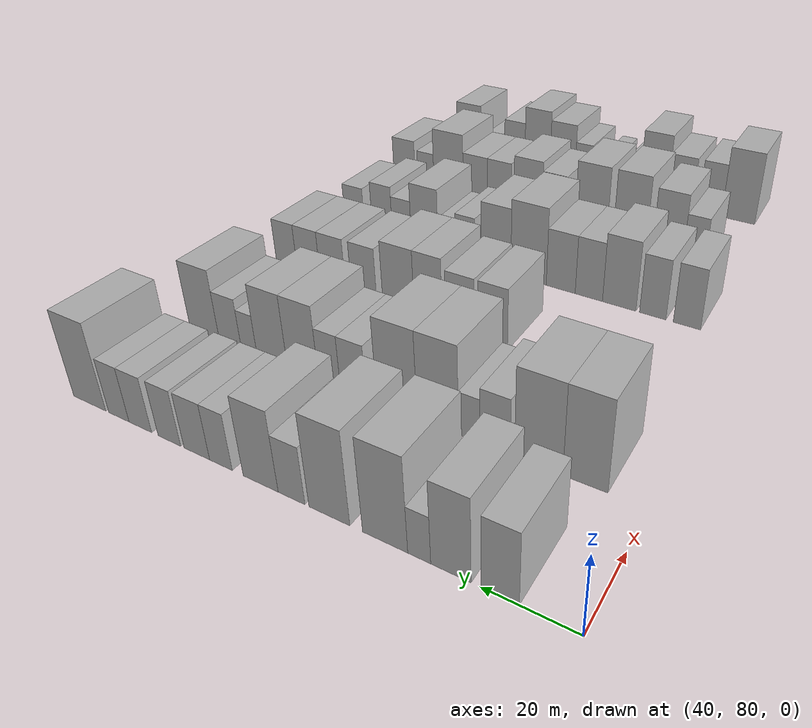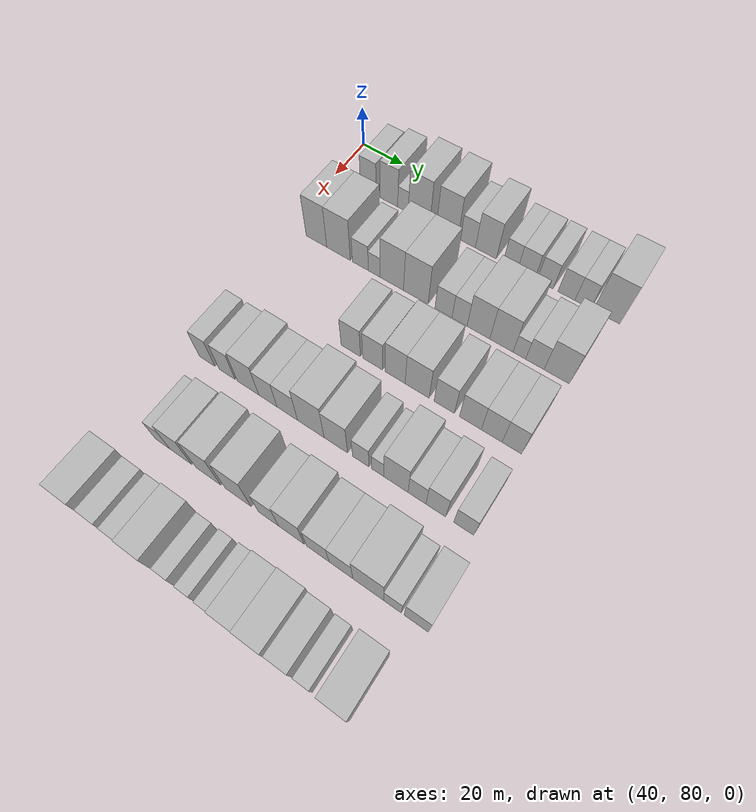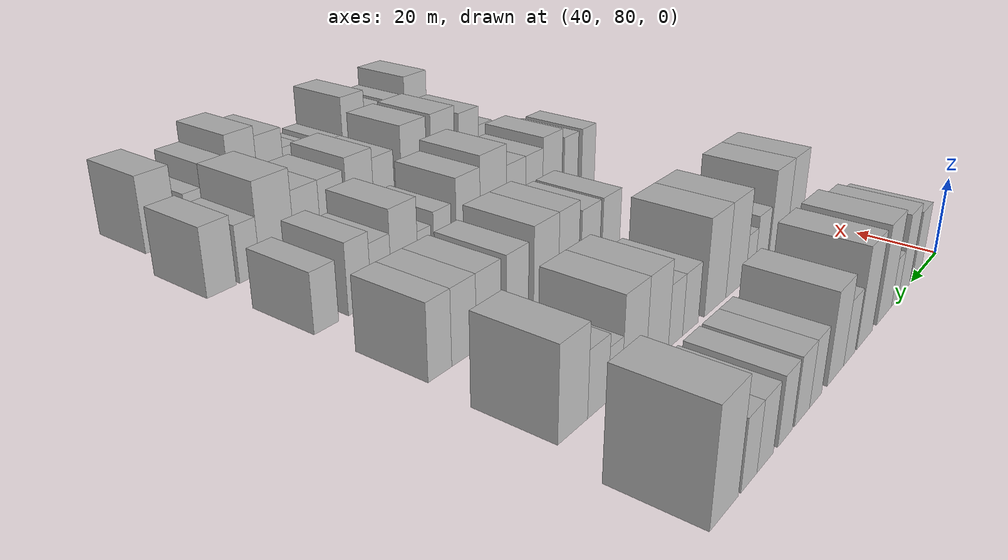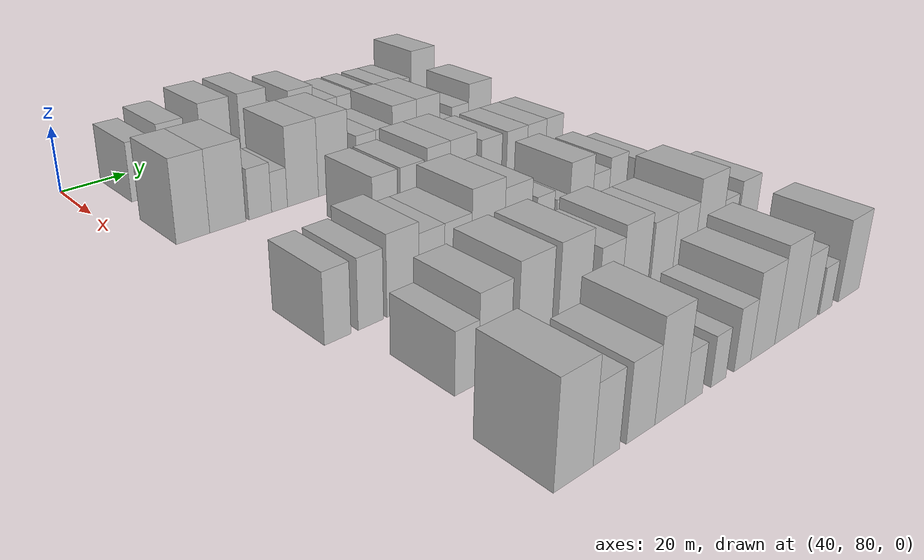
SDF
<sdf version="1.6">
 <world name="default">
  <model name="building_72">
   <static>1</static>
   <pose>50.0000 96.0303 0 0.000000 0.000000 0.000000</pose>
   <link name="link">
    <pose>0 0 9.00 0 0 0</pose>
    <collision name="collision"><geometry><box><size>20.0000 7.6782 18.0000</size></box></geometry></collision>
    <visual name="visual">
     <cast_shadows>0</cast_shadows>
     <geometry><box><size>20.0000 7.6782 18.0000</size></box></geometry>
     <material>
      <script>
       <uri>model://HANNAS_wall/materials/scripts</uri>
       <uri>model://HANNAS_wall/materials/textures</uri>
       <name>vrc/HANNAS_wall</name>
      </script>
     </material>
    </visual>
   </link>
  </model>
  <model name="building_73">
   <static>1</static>
   <pose>50.0000 106.1258 0 0.000000 0.000000 0.000000</pose>
   <link name="link">
    <pose>0 0 10.50 0 0 0</pose>
    <collision name="collision"><geometry><box><size>20.0000 8.5127 21.0000</size></box></geometry></collision>
    <visual name="visual">
     <cast_shadows>0</cast_shadows>
     <geometry><box><size>20.0000 8.5127 21.0000</size></box></geometry>
     <material>
      <script>
       <uri>model://HANNAS_wall/materials/scripts</uri>
       <uri>model://HANNAS_wall/materials/textures</uri>
       <name>vrc/HANNAS_wall</name>
      </script>
     </material>
    </visual>
   </link>
  </model>
  <model name="building_74">
   <static>1</static>
   <pose>50.0000 112.9020 0 0.000000 0.000000 0.000000</pose>
   <link name="link">
    <pose>0 0 6.00 0 0 0</pose>
    <collision name="collision"><geometry><box><size>20.0000 5.0397 12.0000</size></box></geometry></collision>
    <visual name="visual">
     <cast_shadows>0</cast_shadows>
     <geometry><box><size>20.0000 5.0397 12.0000</size></box></geometry>
     <material>
      <script>
       <uri>model://HANNAS_wall/materials/scripts</uri>
       <uri>model://HANNAS_wall/materials/textures</uri>
       <name>vrc/HANNAS_wall</name>
      </script>
     </material>
    </visual>
   </link>
  </model>
  <model name="building_75">
   <static>1</static>
   <pose>50.0000 120.5652 0 0.000000 0.000000 0.000000</pose>
   <link name="link">
    <pose>0 0 12.00 0 0 0</pose>
    <collision name="collision"><geometry><box><size>20.0000 10.2867 24.0000</size></box></geometry></collision>
    <visual name="visual">
     <cast_shadows>0</cast_shadows>
     <geometry><box><size>20.0000 10.2867 24.0000</size></box></geometry>
     <material>
      <script>
       <uri>model://HANNAS_wall/materials/scripts</uri>
       <uri>model://HANNAS_wall/materials/textures</uri>
       <name>vrc/HANNAS_wall</name>
      </script>
     </material>
    </visual>
   </link>
  </model>
  <model name="building_76">
   <static>1</static>
   <pose>50.0000 133.6876 0 0.000000 0.000000 0.000000</pose>
   <link name="link">
    <pose>0 0 12.00 0 0 0</pose>
    <collision name="collision"><geometry><box><size>20.0000 9.9581 24.0000</size></box></geometry></collision>
    <visual name="visual">
     <cast_shadows>0</cast_shadows>
     <geometry><box><size>20.0000 9.9581 24.0000</size></box></geometry>
     <material>
      <script>
       <uri>model://HANNAS_wall/materials/scripts</uri>
       <uri>model://HANNAS_wall/materials/textures</uri>
       <name>vrc/HANNAS_wall</name>
      </script>
     </material>
    </visual>
   </link>
  </model>
  <model name="building_77">
   <static>1</static>
   <pose>50.0000 143.0907 0 0.000000 0.000000 0.000000</pose>
   <link name="link">
    <pose>0 0 7.50 0 0 0</pose>
    <collision name="collision"><geometry><box><size>20.0000 6.8481 15.0000</size></box></geometry></collision>
    <visual name="visual">
     <cast_shadows>0</cast_shadows>
     <geometry><box><size>20.0000 6.8481 15.0000</size></box></geometry>
     <material>
      <script>
       <uri>model://HANNAS_wall/materials/scripts</uri>
       <uri>model://HANNAS_wall/materials/textures</uri>
       <name>vrc/HANNAS_wall</name>
      </script>
     </material>
    </visual>
   </link>
  </model>
  <model name="building_78">
   <static>1</static>
   <pose>50.0000 151.1597 0 0.000000 0.000000 0.000000</pose>
   <link name="link">
    <pose>0 0 10.50 0 0 0</pose>
    <collision name="collision"><geometry><box><size>20.0000 9.2900 21.0000</size></box></geometry></collision>
    <visual name="visual">
     <cast_shadows>0</cast_shadows>
     <geometry><box><size>20.0000 9.2900 21.0000</size></box></geometry>
     <material>
      <script>
       <uri>model://HANNAS_wall/materials/scripts</uri>
       <uri>model://HANNAS_wall/materials/textures</uri>
       <name>vrc/HANNAS_wall</name>
      </script>
     </material>
    </visual>
   </link>
  </model>
  <model name="building_79">
   <static>1</static>
   <pose>50.0000 161.9691 0 0.000000 0.000000 0.000000</pose>
   <link name="link">
    <pose>0 0 7.50 0 0 0</pose>
    <collision name="collision"><geometry><box><size>20.0000 6.3287 15.0000</size></box></geometry></collision>
    <visual name="visual">
     <cast_shadows>0</cast_shadows>
     <geometry><box><size>20.0000 6.3287 15.0000</size></box></geometry>
     <material>
      <script>
       <uri>model://HANNAS_wall/materials/scripts</uri>
       <uri>model://HANNAS_wall/materials/textures</uri>
       <name>vrc/HANNAS_wall</name>
      </script>
     </material>
    </visual>
   </link>
  </model>
  <model name="building_80">
   <static>1</static>
   <pose>50.0000 168.8251 0 0.000000 0.000000 0.000000</pose>
   <link name="link">
    <pose>0 0 7.50 0 0 0</pose>
    <collision name="collision"><geometry><box><size>20.0000 7.3834 15.0000</size></box></geometry></collision>
    <visual name="visual">
     <cast_shadows>0</cast_shadows>
     <geometry><box><size>20.0000 7.3834 15.0000</size></box></geometry>
     <material>
      <script>
       <uri>model://HANNAS_wall/materials/scripts</uri>
       <uri>model://HANNAS_wall/materials/textures</uri>
       <name>vrc/HANNAS_wall</name>
      </script>
     </material>
    </visual>
   </link>
  </model>
  <model name="building_81">
   <static>1</static>
   <pose>50.0000 176.8937 0 0.000000 0.000000 0.000000</pose>
   <link name="link">
    <pose>0 0 7.50 0 0 0</pose>
    <collision name="collision"><geometry><box><size>20.0000 6.7538 15.0000</size></box></geometry></collision>
    <visual name="visual">
     <cast_shadows>0</cast_shadows>
     <geometry><box><size>20.0000 6.7538 15.0000</size></box></geometry>
     <material>
      <script>
       <uri>model://HANNAS_wall/materials/scripts</uri>
       <uri>model://HANNAS_wall/materials/textures</uri>
       <name>vrc/HANNAS_wall</name>
      </script>
     </material>
    </visual>
   </link>
  </model>
  <model name="building_82">
   <static>1</static>
   <pose>50.0000 185.7971 0 0.000000 0.000000 0.000000</pose>
   <link name="link">
    <pose>0 0 7.50 0 0 0</pose>
    <collision name="collision"><geometry><box><size>20.0000 7.0531 15.0000</size></box></geometry></collision>
    <visual name="visual">
     <cast_shadows>0</cast_shadows>
     <geometry><box><size>20.0000 7.0531 15.0000</size></box></geometry>
     <material>
      <script>
       <uri>model://HANNAS_wall/materials/scripts</uri>
       <uri>model://HANNAS_wall/materials/textures</uri>
       <name>vrc/HANNAS_wall</name>
      </script>
     </material>
    </visual>
   </link>
  </model>
  <model name="building_83">
   <static>1</static>
   <pose>50.0000 192.5754 0 0.000000 0.000000 0.000000</pose>
   <link name="link">
    <pose>0 0 7.50 0 0 0</pose>
    <collision name="collision"><geometry><box><size>20.0000 6.5034 15.0000</size></box></geometry></collision>
    <visual name="visual">
     <cast_shadows>0</cast_shadows>
     <geometry><box><size>20.0000 6.5034 15.0000</size></box></geometry>
     <material>
      <script>
       <uri>model://HANNAS_wall/materials/scripts</uri>
       <uri>model://HANNAS_wall/materials/textures</uri>
       <name>vrc/HANNAS_wall</name>
      </script>
     </material>
    </visual>
   </link>
  </model>
  <model name="building_84">
   <static>1</static>
   <pose>50.0000 202.1703 0 0.000000 0.000000 0.000000</pose>
   <link name="link">
    <pose>0 0 12.00 0 0 0</pose>
    <collision name="collision"><geometry><box><size>20.0000 10.6863 24.0000</size></box></geometry></collision>
    <visual name="visual">
     <cast_shadows>0</cast_shadows>
     <geometry><box><size>20.0000 10.6863 24.0000</size></box></geometry>
     <material>
      <script>
       <uri>model://HANNAS_wall/materials/scripts</uri>
       <uri>model://HANNAS_wall/materials/textures</uri>
       <name>vrc/HANNAS_wall</name>
      </script>
     </material>
    </visual>
   </link>
  </model>
  <model name="building_192">
   <static>1</static>
   <pose>82.0000 93.6168 0 0.000000 0.000000 0.000000</pose>
   <link name="link">
    <pose>0 0 12.00 0 0 0</pose>
    <collision name="collision"><geometry><box><size>20.0000 9.9413 24.0000</size></box></geometry></collision>
    <visual name="visual">
     <cast_shadows>0</cast_shadows>
     <geometry><box><size>20.0000 9.9413 24.0000</size></box></geometry>
     <material>
      <script>
       <uri>model://HANNAS_wall/materials/scripts</uri>
       <uri>model://HANNAS_wall/materials/textures</uri>
       <name>vrc/HANNAS_wall</name>
      </script>
     </material>
    </visual>
   </link>
  </model>
  <model name="building_193">
   <static>1</static>
   <pose>82.0000 104.1695 0 0.000000 0.000000 0.000000</pose>
   <link name="link">
    <pose>0 0 12.00 0 0 0</pose>
    <collision name="collision"><geometry><box><size>20.0000 11.1640 24.0000</size></box></geometry></collision>
    <visual name="visual">
     <cast_shadows>0</cast_shadows>
     <geometry><box><size>20.0000 11.1640 24.0000</size></box></geometry>
     <material>
      <script>
       <uri>model://HANNAS_wall/materials/scripts</uri>
       <uri>model://HANNAS_wall/materials/textures</uri>
       <name>vrc/HANNAS_wall</name>
      </script>
     </material>
    </visual>
   </link>
  </model>
  <model name="building_194">
   <static>1</static>
   <pose>82.0000 114.4249 0 0.000000 0.000000 0.000000</pose>
   <link name="link">
    <pose>0 0 7.50 0 0 0</pose>
    <collision name="collision"><geometry><box><size>20.0000 7.3470 15.0000</size></box></geometry></collision>
    <visual name="visual">
     <cast_shadows>0</cast_shadows>
     <geometry><box><size>20.0000 7.3470 15.0000</size></box></geometry>
     <material>
      <script>
       <uri>model://HANNAS_wall/materials/scripts</uri>
       <uri>model://HANNAS_wall/materials/textures</uri>
       <name>vrc/HANNAS_wall</name>
      </script>
     </material>
    </visual>
   </link>
  </model>
  <model name="building_195">
   <static>1</static>
   <pose>82.0000 120.7481 0 0.000000 0.000000 0.000000</pose>
   <link name="link">
    <pose>0 0 6.00 0 0 0</pose>
    <collision name="collision"><geometry><box><size>20.0000 5.2994 12.0000</size></box></geometry></collision>
    <visual name="visual">
     <cast_shadows>0</cast_shadows>
     <geometry><box><size>20.0000 5.2994 12.0000</size></box></geometry>
     <material>
      <script>
       <uri>model://HANNAS_wall/materials/scripts</uri>
       <uri>model://HANNAS_wall/materials/textures</uri>
       <name>vrc/HANNAS_wall</name>
      </script>
     </material>
    </visual>
   </link>
  </model>
  <model name="building_196">
   <static>1</static>
   <pose>82.0000 128.7482 0 0.000000 0.000000 0.000000</pose>
   <link name="link">
    <pose>0 0 12.00 0 0 0</pose>
    <collision name="collision"><geometry><box><size>20.0000 10.7007 24.0000</size></box></geometry></collision>
    <visual name="visual">
     <cast_shadows>0</cast_shadows>
     <geometry><box><size>20.0000 10.7007 24.0000</size></box></geometry>
     <material>
      <script>
       <uri>model://HANNAS_wall/materials/scripts</uri>
       <uri>model://HANNAS_wall/materials/textures</uri>
       <name>vrc/HANNAS_wall</name>
      </script>
     </material>
    </visual>
   </link>
  </model>
  <model name="building_197">
   <static>1</static>
   <pose>82.0000 139.5541 0 0.000000 0.000000 0.000000</pose>
   <link name="link">
    <pose>0 0 12.00 0 0 0</pose>
    <collision name="collision"><geometry><box><size>20.0000 10.9112 24.0000</size></box></geometry></collision>
    <visual name="visual">
     <cast_shadows>0</cast_shadows>
     <geometry><box><size>20.0000 10.9112 24.0000</size></box></geometry>
     <material>
      <script>
       <uri>model://HANNAS_wall/materials/scripts</uri>
       <uri>model://HANNAS_wall/materials/textures</uri>
       <name>vrc/HANNAS_wall</name>
      </script>
     </material>
    </visual>
   </link>
  </model>
  <model name="building_198">
   <static>1</static>
   <pose>82.0000 151.6959 0 0.000000 0.000000 0.000000</pose>
   <link name="link">
    <pose>0 0 7.50 0 0 0</pose>
    <collision name="collision"><geometry><box><size>20.0000 7.3725 15.0000</size></box></geometry></collision>
    <visual name="visual">
     <cast_shadows>0</cast_shadows>
     <geometry><box><size>20.0000 7.3725 15.0000</size></box></geometry>
     <material>
      <script>
       <uri>model://HANNAS_wall/materials/scripts</uri>
       <uri>model://HANNAS_wall/materials/textures</uri>
       <name>vrc/HANNAS_wall</name>
      </script>
     </material>
    </visual>
   </link>
  </model>
  <model name="building_199">
   <static>1</static>
   <pose>82.0000 158.5833 0 0.000000 0.000000 0.000000</pose>
   <link name="link">
    <pose>0 0 7.50 0 0 0</pose>
    <collision name="collision"><geometry><box><size>20.0000 6.4022 15.0000</size></box></geometry></collision>
    <visual name="visual">
     <cast_shadows>0</cast_shadows>
     <geometry><box><size>20.0000 6.4022 15.0000</size></box></geometry>
     <material>
      <script>
       <uri>model://HANNAS_wall/materials/scripts</uri>
       <uri>model://HANNAS_wall/materials/textures</uri>
       <name>vrc/HANNAS_wall</name>
      </script>
     </material>
    </visual>
   </link>
  </model>
  <model name="building_200">
   <static>1</static>
   <pose>82.0000 166.5389 0 0.000000 0.000000 0.000000</pose>
   <link name="link">
    <pose>0 0 10.50 0 0 0</pose>
    <collision name="collision"><geometry><box><size>20.0000 9.5090 21.0000</size></box></geometry></collision>
    <visual name="visual">
     <cast_shadows>0</cast_shadows>
     <geometry><box><size>20.0000 9.5090 21.0000</size></box></geometry>
     <material>
      <script>
       <uri>model://HANNAS_wall/materials/scripts</uri>
       <uri>model://HANNAS_wall/materials/textures</uri>
       <name>vrc/HANNAS_wall</name>
      </script>
     </material>
    </visual>
   </link>
  </model>
  <model name="building_201">
   <static>1</static>
   <pose>82.0000 176.0829 0 0.000000 0.000000 0.000000</pose>
   <link name="link">
    <pose>0 0 10.50 0 0 0</pose>
    <collision name="collision"><geometry><box><size>20.0000 9.5791 21.0000</size></box></geometry></collision>
    <visual name="visual">
     <cast_shadows>0</cast_shadows>
     <geometry><box><size>20.0000 9.5791 21.0000</size></box></geometry>
     <material>
      <script>
       <uri>model://HANNAS_wall/materials/scripts</uri>
       <uri>model://HANNAS_wall/materials/textures</uri>
       <name>vrc/HANNAS_wall</name>
      </script>
     </material>
    </visual>
   </link>
  </model>
  <model name="building_202">
   <static>1</static>
   <pose>82.0000 183.4058 0 0.000000 0.000000 0.000000</pose>
   <link name="link">
    <pose>0 0 6.00 0 0 0</pose>
    <collision name="collision"><geometry><box><size>20.0000 5.0666 12.0000</size></box></geometry></collision>
    <visual name="visual">
     <cast_shadows>0</cast_shadows>
     <geometry><box><size>20.0000 5.0666 12.0000</size></box></geometry>
     <material>
      <script>
       <uri>model://HANNAS_wall/materials/scripts</uri>
       <uri>model://HANNAS_wall/materials/textures</uri>
       <name>vrc/HANNAS_wall</name>
      </script>
     </material>
    </visual>
   </link>
  </model>
  <model name="building_203">
   <static>1</static>
   <pose>82.0000 189.6084 0 0.000000 0.000000 0.000000</pose>
   <link name="link">
    <pose>0 0 7.50 0 0 0</pose>
    <collision name="collision"><geometry><box><size>20.0000 7.3386 15.0000</size></box></geometry></collision>
    <visual name="visual">
     <cast_shadows>0</cast_shadows>
     <geometry><box><size>20.0000 7.3386 15.0000</size></box></geometry>
     <material>
      <script>
       <uri>model://HANNAS_wall/materials/scripts</uri>
       <uri>model://HANNAS_wall/materials/textures</uri>
       <name>vrc/HANNAS_wall</name>
      </script>
     </material>
    </visual>
   </link>
  </model>
  <model name="building_204">
   <static>1</static>
   <pose>82.0000 198.2650 0 0.000000 0.000000 0.000000</pose>
   <link name="link">
    <pose>0 0 10.50 0 0 0</pose>
    <collision name="collision"><geometry><box><size>20.0000 9.9747 21.0000</size></box></geometry></collision>
    <visual name="visual">
     <cast_shadows>0</cast_shadows>
     <geometry><box><size>20.0000 9.9747 21.0000</size></box></geometry>
     <material>
      <script>
       <uri>model://HANNAS_wall/materials/scripts</uri>
       <uri>model://HANNAS_wall/materials/textures</uri>
       <name>vrc/HANNAS_wall</name>
      </script>
     </material>
    </visual>
   </link>
  </model>
  <model name="building_317">
   <static>1</static>
   <pose>114.0000 132.5237 0 0.000000 0.000000 0.000000</pose>
   <link name="link">
    <pose>0 0 9.00 0 0 0</pose>
    <collision name="collision"><geometry><box><size>20.0000 8.4306 18.0000</size></box></geometry></collision>
    <visual name="visual">
     <cast_shadows>0</cast_shadows>
     <geometry><box><size>20.0000 8.4306 18.0000</size></box></geometry>
     <material>
      <script>
       <uri>model://HANNAS_wall/materials/scripts</uri>
       <uri>model://HANNAS_wall/materials/textures</uri>
       <name>vrc/HANNAS_wall</name>
      </script>
     </material>
    </visual>
   </link>
  </model>
  <model name="building_318">
   <static>1</static>
   <pose>114.0000 141.9653 0 0.000000 0.000000 0.000000</pose>
   <link name="link">
    <pose>0 0 9.00 0 0 0</pose>
    <collision name="collision"><geometry><box><size>20.0000 8.4526 18.0000</size></box></geometry></collision>
    <visual name="visual">
     <cast_shadows>0</cast_shadows>
     <geometry><box><size>20.0000 8.4526 18.0000</size></box></geometry>
     <material>
      <script>
       <uri>model://HANNAS_wall/materials/scripts</uri>
       <uri>model://HANNAS_wall/materials/textures</uri>
       <name>vrc/HANNAS_wall</name>
      </script>
     </material>
    </visual>
   </link>
  </model>
  <model name="building_319">
   <static>1</static>
   <pose>114.0000 151.4583 0 0.000000 0.000000 0.000000</pose>
   <link name="link">
    <pose>0 0 10.50 0 0 0</pose>
    <collision name="collision"><geometry><box><size>20.0000 8.5334 21.0000</size></box></geometry></collision>
    <visual name="visual">
     <cast_shadows>0</cast_shadows>
     <geometry><box><size>20.0000 8.5334 21.0000</size></box></geometry>
     <material>
      <script>
       <uri>model://HANNAS_wall/materials/scripts</uri>
       <uri>model://HANNAS_wall/materials/textures</uri>
       <name>vrc/HANNAS_wall</name>
      </script>
     </material>
    </visual>
   </link>
  </model>
  <model name="building_320">
   <static>1</static>
   <pose>114.0000 160.6687 0 0.000000 0.000000 0.000000</pose>
   <link name="link">
    <pose>0 0 10.50 0 0 0</pose>
    <collision name="collision"><geometry><box><size>20.0000 9.8875 21.0000</size></box></geometry></collision>
    <visual name="visual">
     <cast_shadows>0</cast_shadows>
     <geometry><box><size>20.0000 9.8875 21.0000</size></box></geometry>
     <material>
      <script>
       <uri>model://HANNAS_wall/materials/scripts</uri>
       <uri>model://HANNAS_wall/materials/textures</uri>
       <name>vrc/HANNAS_wall</name>
      </script>
     </material>
    </visual>
   </link>
  </model>
  <model name="building_321">
   <static>1</static>
   <pose>114.0000 171.7070 0 0.000000 0.000000 0.000000</pose>
   <link name="link">
    <pose>0 0 9.00 0 0 0</pose>
    <collision name="collision"><geometry><box><size>20.0000 8.1892 18.0000</size></box></geometry></collision>
    <visual name="visual">
     <cast_shadows>0</cast_shadows>
     <geometry><box><size>20.0000 8.1892 18.0000</size></box></geometry>
     <material>
      <script>
       <uri>model://HANNAS_wall/materials/scripts</uri>
       <uri>model://HANNAS_wall/materials/textures</uri>
       <name>vrc/HANNAS_wall</name>
      </script>
     </material>
    </visual>
   </link>
  </model>
  <model name="building_322">
   <static>1</static>
   <pose>114.0000 182.0711 0 0.000000 0.000000 0.000000</pose>
   <link name="link">
    <pose>0 0 9.00 0 0 0</pose>
    <collision name="collision"><geometry><box><size>20.0000 8.5389 18.0000</size></box></geometry></collision>
    <visual name="visual">
     <cast_shadows>0</cast_shadows>
     <geometry><box><size>20.0000 8.5389 18.0000</size></box></geometry>
     <material>
      <script>
       <uri>model://HANNAS_wall/materials/scripts</uri>
       <uri>model://HANNAS_wall/materials/textures</uri>
       <name>vrc/HANNAS_wall</name>
      </script>
     </material>
    </visual>
   </link>
  </model>
  <model name="building_323">
   <static>1</static>
   <pose>114.0000 190.3763 0 0.000000 0.000000 0.000000</pose>
   <link name="link">
    <pose>0 0 9.00 0 0 0</pose>
    <collision name="collision"><geometry><box><size>20.0000 8.0713 18.0000</size></box></geometry></collision>
    <visual name="visual">
     <cast_shadows>0</cast_shadows>
     <geometry><box><size>20.0000 8.0713 18.0000</size></box></geometry>
     <material>
      <script>
       <uri>model://HANNAS_wall/materials/scripts</uri>
       <uri>model://HANNAS_wall/materials/textures</uri>
       <name>vrc/HANNAS_wall</name>
      </script>
     </material>
    </visual>
   </link>
  </model>
  <model name="building_324">
   <static>1</static>
   <pose>114.0000 198.1006 0 0.000000 0.000000 0.000000</pose>
   <link name="link">
    <pose>0 0 9.00 0 0 0</pose>
    <collision name="collision"><geometry><box><size>20.0000 7.3774 18.0000</size></box></geometry></collision>
    <visual name="visual">
     <cast_shadows>0</cast_shadows>
     <geometry><box><size>20.0000 7.3774 18.0000</size></box></geometry>
     <material>
      <script>
       <uri>model://HANNAS_wall/materials/scripts</uri>
       <uri>model://HANNAS_wall/materials/textures</uri>
       <name>vrc/HANNAS_wall</name>
      </script>
     </material>
    </visual>
   </link>
  </model>
  <model name="building_420">
   <static>1</static>
   <pose>146.0000 92.7450 0 0.000000 0.000000 0.000000</pose>
   <link name="link">
    <pose>0 0 9.00 0 0 0</pose>
    <collision name="collision"><geometry><box><size>20.0000 7.2516 18.0000</size></box></geometry></collision>
    <visual name="visual">
     <cast_shadows>0</cast_shadows>
     <geometry><box><size>20.0000 7.2516 18.0000</size></box></geometry>
     <material>
      <script>
       <uri>model://HANNAS_wall/materials/scripts</uri>
       <uri>model://HANNAS_wall/materials/textures</uri>
       <name>vrc/HANNAS_wall</name>
      </script>
     </material>
    </visual>
   </link>
  </model>
  <model name="building_421">
   <static>1</static>
   <pose>146.0000 102.0057 0 0.000000 0.000000 0.000000</pose>
   <link name="link">
    <pose>0 0 9.00 0 0 0</pose>
    <collision name="collision"><geometry><box><size>20.0000 7.2697 18.0000</size></box></geometry></collision>
    <visual name="visual">
     <cast_shadows>0</cast_shadows>
     <geometry><box><size>20.0000 7.2697 18.0000</size></box></geometry>
     <material>
      <script>
       <uri>model://HANNAS_wall/materials/scripts</uri>
       <uri>model://HANNAS_wall/materials/textures</uri>
       <name>vrc/HANNAS_wall</name>
      </script>
     </material>
    </visual>
   </link>
  </model>
  <model name="building_422">
   <static>1</static>
   <pose>146.0000 111.4144 0 0.000000 0.000000 0.000000</pose>
   <link name="link">
    <pose>0 0 10.50 0 0 0</pose>
    <collision name="collision"><geometry><box><size>20.0000 9.5479 21.0000</size></box></geometry></collision>
    <visual name="visual">
     <cast_shadows>0</cast_shadows>
     <geometry><box><size>20.0000 9.5479 21.0000</size></box></geometry>
     <material>
      <script>
       <uri>model://HANNAS_wall/materials/scripts</uri>
       <uri>model://HANNAS_wall/materials/textures</uri>
       <name>vrc/HANNAS_wall</name>
      </script>
     </material>
    </visual>
   </link>
  </model>
  <model name="building_423">
   <static>1</static>
   <pose>146.0000 120.1971 0 0.000000 0.000000 0.000000</pose>
   <link name="link">
    <pose>0 0 9.00 0 0 0</pose>
    <collision name="collision"><geometry><box><size>20.0000 8.0174 18.0000</size></box></geometry></collision>
    <visual name="visual">
     <cast_shadows>0</cast_shadows>
     <geometry><box><size>20.0000 8.0174 18.0000</size></box></geometry>
     <material>
      <script>
       <uri>model://HANNAS_wall/materials/scripts</uri>
       <uri>model://HANNAS_wall/materials/textures</uri>
       <name>vrc/HANNAS_wall</name>
      </script>
     </material>
    </visual>
   </link>
  </model>
  <model name="building_424">
   <static>1</static>
   <pose>146.0000 128.5973 0 0.000000 0.000000 0.000000</pose>
   <link name="link">
    <pose>0 0 9.00 0 0 0</pose>
    <collision name="collision"><geometry><box><size>20.0000 8.7830 18.0000</size></box></geometry></collision>
    <visual name="visual">
     <cast_shadows>0</cast_shadows>
     <geometry><box><size>20.0000 8.7830 18.0000</size></box></geometry>
     <material>
      <script>
       <uri>model://HANNAS_wall/materials/scripts</uri>
       <uri>model://HANNAS_wall/materials/textures</uri>
       <name>vrc/HANNAS_wall</name>
      </script>
     </material>
    </visual>
   </link>
  </model>
  <model name="building_425">
   <static>1</static>
   <pose>146.0000 138.5722 0 0.000000 0.000000 0.000000</pose>
   <link name="link">
    <pose>0 0 12.00 0 0 0</pose>
    <collision name="collision"><geometry><box><size>20.0000 11.1667 24.0000</size></box></geometry></collision>
    <visual name="visual">
     <cast_shadows>0</cast_shadows>
     <geometry><box><size>20.0000 11.1667 24.0000</size></box></geometry>
     <material>
      <script>
       <uri>model://HANNAS_wall/materials/scripts</uri>
       <uri>model://HANNAS_wall/materials/textures</uri>
       <name>vrc/HANNAS_wall</name>
      </script>
     </material>
    </visual>
   </link>
  </model>
  <model name="building_426">
   <static>1</static>
   <pose>146.0000 148.9858 0 0.000000 0.000000 0.000000</pose>
   <link name="link">
    <pose>0 0 10.50 0 0 0</pose>
    <collision name="collision"><geometry><box><size>20.0000 9.6605 21.0000</size></box></geometry></collision>
    <visual name="visual">
     <cast_shadows>0</cast_shadows>
     <geometry><box><size>20.0000 9.6605 21.0000</size></box></geometry>
     <material>
      <script>
       <uri>model://HANNAS_wall/materials/scripts</uri>
       <uri>model://HANNAS_wall/materials/textures</uri>
       <name>vrc/HANNAS_wall</name>
      </script>
     </material>
    </visual>
   </link>
  </model>
  <model name="building_427">
   <static>1</static>
   <pose>146.0000 159.1092 0 0.000000 0.000000 0.000000</pose>
   <link name="link">
    <pose>0 0 7.50 0 0 0</pose>
    <collision name="collision"><geometry><box><size>20.0000 6.5864 15.0000</size></box></geometry></collision>
    <visual name="visual">
     <cast_shadows>0</cast_shadows>
     <geometry><box><size>20.0000 6.5864 15.0000</size></box></geometry>
     <material>
      <script>
       <uri>model://HANNAS_wall/materials/scripts</uri>
       <uri>model://HANNAS_wall/materials/textures</uri>
       <name>vrc/HANNAS_wall</name>
      </script>
     </material>
    </visual>
   </link>
  </model>
  <model name="building_428">
   <static>1</static>
   <pose>146.0000 165.8434 0 0.000000 0.000000 0.000000</pose>
   <link name="link">
    <pose>0 0 6.00 0 0 0</pose>
    <collision name="collision"><geometry><box><size>20.0000 4.8819 12.0000</size></box></geometry></collision>
    <visual name="visual">
     <cast_shadows>0</cast_shadows>
     <geometry><box><size>20.0000 4.8819 12.0000</size></box></geometry>
     <material>
      <script>
       <uri>model://HANNAS_wall/materials/scripts</uri>
       <uri>model://HANNAS_wall/materials/textures</uri>
       <name>vrc/HANNAS_wall</name>
      </script>
     </material>
    </visual>
   </link>
  </model>
  <model name="building_429">
   <static>1</static>
   <pose>146.0000 172.9929 0 0.000000 0.000000 0.000000</pose>
   <link name="link">
    <pose>0 0 10.50 0 0 0</pose>
    <collision name="collision"><geometry><box><size>20.0000 9.4171 21.0000</size></box></geometry></collision>
    <visual name="visual">
     <cast_shadows>0</cast_shadows>
     <geometry><box><size>20.0000 9.4171 21.0000</size></box></geometry>
     <material>
      <script>
       <uri>model://HANNAS_wall/materials/scripts</uri>
       <uri>model://HANNAS_wall/materials/textures</uri>
       <name>vrc/HANNAS_wall</name>
      </script>
     </material>
    </visual>
   </link>
  </model>
  <model name="building_430">
   <static>1</static>
   <pose>146.0000 181.1008 0 0.000000 0.000000 0.000000</pose>
   <link name="link">
    <pose>0 0 7.50 0 0 0</pose>
    <collision name="collision"><geometry><box><size>20.0000 6.7989 15.0000</size></box></geometry></collision>
    <visual name="visual">
     <cast_shadows>0</cast_shadows>
     <geometry><box><size>20.0000 6.7989 15.0000</size></box></geometry>
     <material>
      <script>
       <uri>model://HANNAS_wall/materials/scripts</uri>
       <uri>model://HANNAS_wall/materials/textures</uri>
       <name>vrc/HANNAS_wall</name>
      </script>
     </material>
    </visual>
   </link>
  </model>
  <model name="building_431">
   <static>1</static>
   <pose>146.0000 188.1971 0 0.000000 0.000000 0.000000</pose>
   <link name="link">
    <pose>0 0 9.00 0 0 0</pose>
    <collision name="collision"><geometry><box><size>20.0000 7.3936 18.0000</size></box></geometry></collision>
    <visual name="visual">
     <cast_shadows>0</cast_shadows>
     <geometry><box><size>20.0000 7.3936 18.0000</size></box></geometry>
     <material>
      <script>
       <uri>model://HANNAS_wall/materials/scripts</uri>
       <uri>model://HANNAS_wall/materials/textures</uri>
       <name>vrc/HANNAS_wall</name>
      </script>
     </material>
    </visual>
   </link>
  </model>
  <model name="building_432">
   <static>1</static>
   <pose>146.0000 198.5819 0 0.000000 0.000000 0.000000</pose>
   <link name="link">
    <pose>0 0 7.50 0 0 0</pose>
    <collision name="collision"><geometry><box><size>20.0000 7.3760 15.0000</size></box></geometry></collision>
    <visual name="visual">
     <cast_shadows>0</cast_shadows>
     <geometry><box><size>20.0000 7.3760 15.0000</size></box></geometry>
     <material>
      <script>
       <uri>model://HANNAS_wall/materials/scripts</uri>
       <uri>model://HANNAS_wall/materials/textures</uri>
       <name>vrc/HANNAS_wall</name>
      </script>
     </material>
    </visual>
   </link>
  </model>
  <model name="building_542">
   <static>1</static>
   <pose>178.0000 100.9402 0 0.000000 0.000000 0.000000</pose>
   <link name="link">
    <pose>0 0 7.50 0 0 0</pose>
    <collision name="collision"><geometry><box><size>20.0000 6.6149 15.0000</size></box></geometry></collision>
    <visual name="visual">
     <cast_shadows>0</cast_shadows>
     <geometry><box><size>20.0000 6.6149 15.0000</size></box></geometry>
     <material>
      <script>
       <uri>model://HANNAS_wall/materials/scripts</uri>
       <uri>model://HANNAS_wall/materials/textures</uri>
       <name>vrc/HANNAS_wall</name>
      </script>
     </material>
    </visual>
   </link>
  </model>
  <model name="building_543">
   <static>1</static>
   <pose>178.0000 108.9135 0 0.000000 0.000000 0.000000</pose>
   <link name="link">
    <pose>0 0 10.50 0 0 0</pose>
    <collision name="collision"><geometry><box><size>20.0000 9.3318 21.0000</size></box></geometry></collision>
    <visual name="visual">
     <cast_shadows>0</cast_shadows>
     <geometry><box><size>20.0000 9.3318 21.0000</size></box></geometry>
     <material>
      <script>
       <uri>model://HANNAS_wall/materials/scripts</uri>
       <uri>model://HANNAS_wall/materials/textures</uri>
       <name>vrc/HANNAS_wall</name>
      </script>
     </material>
    </visual>
   </link>
  </model>
  <model name="building_544">
   <static>1</static>
   <pose>178.0000 120.8240 0 0.000000 0.000000 0.000000</pose>
   <link name="link">
    <pose>0 0 12.00 0 0 0</pose>
    <collision name="collision"><geometry><box><size>20.0000 10.4891 24.0000</size></box></geometry></collision>
    <visual name="visual">
     <cast_shadows>0</cast_shadows>
     <geometry><box><size>20.0000 10.4891 24.0000</size></box></geometry>
     <material>
      <script>
       <uri>model://HANNAS_wall/materials/scripts</uri>
       <uri>model://HANNAS_wall/materials/textures</uri>
       <name>vrc/HANNAS_wall</name>
      </script>
     </material>
    </visual>
   </link>
  </model>
  <model name="building_545">
   <static>1</static>
   <pose>178.0000 133.3915 0 0.000000 0.000000 0.000000</pose>
   <link name="link">
    <pose>0 0 12.00 0 0 0</pose>
    <collision name="collision"><geometry><box><size>20.0000 10.6460 24.0000</size></box></geometry></collision>
    <visual name="visual">
     <cast_shadows>0</cast_shadows>
     <geometry><box><size>20.0000 10.6460 24.0000</size></box></geometry>
     <material>
      <script>
       <uri>model://HANNAS_wall/materials/scripts</uri>
       <uri>model://HANNAS_wall/materials/textures</uri>
       <name>vrc/HANNAS_wall</name>
      </script>
     </material>
    </visual>
   </link>
  </model>
  <model name="building_546">
   <static>1</static>
   <pose>178.0000 145.8156 0 0.000000 0.000000 0.000000</pose>
   <link name="link">
    <pose>0 0 9.00 0 0 0</pose>
    <collision name="collision"><geometry><box><size>20.0000 8.2022 18.0000</size></box></geometry></collision>
    <visual name="visual">
     <cast_shadows>0</cast_shadows>
     <geometry><box><size>20.0000 8.2022 18.0000</size></box></geometry>
     <material>
      <script>
       <uri>model://HANNAS_wall/materials/scripts</uri>
       <uri>model://HANNAS_wall/materials/textures</uri>
       <name>vrc/HANNAS_wall</name>
      </script>
     </material>
    </visual>
   </link>
  </model>
  <model name="building_547">
   <static>1</static>
   <pose>178.0000 154.9055 0 0.000000 0.000000 0.000000</pose>
   <link name="link">
    <pose>0 0 10.50 0 0 0</pose>
    <collision name="collision"><geometry><box><size>20.0000 9.9777 21.0000</size></box></geometry></collision>
    <visual name="visual">
     <cast_shadows>0</cast_shadows>
     <geometry><box><size>20.0000 9.9777 21.0000</size></box></geometry>
     <material>
      <script>
       <uri>model://HANNAS_wall/materials/scripts</uri>
       <uri>model://HANNAS_wall/materials/textures</uri>
       <name>vrc/HANNAS_wall</name>
      </script>
     </material>
    </visual>
   </link>
  </model>
  <model name="building_548">
   <static>1</static>
   <pose>178.0000 165.2265 0 0.000000 0.000000 0.000000</pose>
   <link name="link">
    <pose>0 0 9.00 0 0 0</pose>
    <collision name="collision"><geometry><box><size>20.0000 8.6643 18.0000</size></box></geometry></collision>
    <visual name="visual">
     <cast_shadows>0</cast_shadows>
     <geometry><box><size>20.0000 8.6643 18.0000</size></box></geometry>
     <material>
      <script>
       <uri>model://HANNAS_wall/materials/scripts</uri>
       <uri>model://HANNAS_wall/materials/textures</uri>
       <name>vrc/HANNAS_wall</name>
      </script>
     </material>
    </visual>
   </link>
  </model>
  <model name="building_549">
   <static>1</static>
   <pose>178.0000 174.0065 0 0.000000 0.000000 0.000000</pose>
   <link name="link">
    <pose>0 0 9.00 0 0 0</pose>
    <collision name="collision"><geometry><box><size>20.0000 8.8958 18.0000</size></box></geometry></collision>
    <visual name="visual">
     <cast_shadows>0</cast_shadows>
     <geometry><box><size>20.0000 8.8958 18.0000</size></box></geometry>
     <material>
      <script>
       <uri>model://HANNAS_wall/materials/scripts</uri>
       <uri>model://HANNAS_wall/materials/textures</uri>
       <name>vrc/HANNAS_wall</name>
      </script>
     </material>
    </visual>
   </link>
  </model>
  <model name="building_550">
   <static>1</static>
   <pose>178.0000 184.0861 0 0.000000 0.000000 0.000000</pose>
   <link name="link">
    <pose>0 0 12.00 0 0 0</pose>
    <collision name="collision"><geometry><box><size>20.0000 11.2635 24.0000</size></box></geometry></collision>
    <visual name="visual">
     <cast_shadows>0</cast_shadows>
     <geometry><box><size>20.0000 11.2635 24.0000</size></box></geometry>
     <material>
      <script>
       <uri>model://HANNAS_wall/materials/scripts</uri>
       <uri>model://HANNAS_wall/materials/textures</uri>
       <name>vrc/HANNAS_wall</name>
      </script>
     </material>
    </visual>
   </link>
  </model>
  <model name="building_551">
   <static>1</static>
   <pose>178.0000 192.9003 0 0.000000 0.000000 0.000000</pose>
   <link name="link">
    <pose>0 0 7.50 0 0 0</pose>
    <collision name="collision"><geometry><box><size>20.0000 6.3648 15.0000</size></box></geometry></collision>
    <visual name="visual">
     <cast_shadows>0</cast_shadows>
     <geometry><box><size>20.0000 6.3648 15.0000</size></box></geometry>
     <material>
      <script>
       <uri>model://HANNAS_wall/materials/scripts</uri>
       <uri>model://HANNAS_wall/materials/textures</uri>
       <name>vrc/HANNAS_wall</name>
      </script>
     </material>
    </visual>
   </link>
  </model>
  <model name="building_552">
   <static>1</static>
   <pose>178.0000 201.3544 0 0.000000 0.000000 0.000000</pose>
   <link name="link">
    <pose>0 0 9.00 0 0 0</pose>
    <collision name="collision"><geometry><box><size>20.0000 8.5435 18.0000</size></box></geometry></collision>
    <visual name="visual">
     <cast_shadows>0</cast_shadows>
     <geometry><box><size>20.0000 8.5435 18.0000</size></box></geometry>
     <material>
      <script>
       <uri>model://HANNAS_wall/materials/scripts</uri>
       <uri>model://HANNAS_wall/materials/textures</uri>
       <name>vrc/HANNAS_wall</name>
      </script>
     </material>
    </visual>
   </link>
  </model>
  <model name="building_656">
   <static>1</static>
   <pose>210.0000 96.4873 0 0.000000 0.000000 0.000000</pose>
   <link name="link">
    <pose>0 0 12.00 0 0 0</pose>
    <collision name="collision"><geometry><box><size>20.0000 10.6126 24.0000</size></box></geometry></collision>
    <visual name="visual">
     <cast_shadows>0</cast_shadows>
     <geometry><box><size>20.0000 10.6126 24.0000</size></box></geometry>
     <material>
      <script>
       <uri>model://HANNAS_wall/materials/scripts</uri>
       <uri>model://HANNAS_wall/materials/textures</uri>
       <name>vrc/HANNAS_wall</name>
      </script>
     </material>
    </visual>
   </link>
  </model>
  <model name="building_657">
   <static>1</static>
   <pose>210.0000 105.5506 0 0.000000 0.000000 0.000000</pose>
   <link name="link">
    <pose>0 0 9.00 0 0 0</pose>
    <collision name="collision"><geometry><box><size>20.0000 7.5141 18.0000</size></box></geometry></collision>
    <visual name="visual">
     <cast_shadows>0</cast_shadows>
     <geometry><box><size>20.0000 7.5141 18.0000</size></box></geometry>
     <material>
      <script>
       <uri>model://HANNAS_wall/materials/scripts</uri>
       <uri>model://HANNAS_wall/materials/textures</uri>
       <name>vrc/HANNAS_wall</name>
      </script>
     </material>
    </visual>
   </link>
  </model>
  <model name="building_658">
   <static>1</static>
   <pose>210.0000 115.6274 0 0.000000 0.000000 0.000000</pose>
   <link name="link">
    <pose>0 0 9.00 0 0 0</pose>
    <collision name="collision"><geometry><box><size>20.0000 8.6395 18.0000</size></box></geometry></collision>
    <visual name="visual">
     <cast_shadows>0</cast_shadows>
     <geometry><box><size>20.0000 8.6395 18.0000</size></box></geometry>
     <material>
      <script>
       <uri>model://HANNAS_wall/materials/scripts</uri>
       <uri>model://HANNAS_wall/materials/textures</uri>
       <name>vrc/HANNAS_wall</name>
      </script>
     </material>
    </visual>
   </link>
  </model>
  <model name="building_659">
   <static>1</static>
   <pose>210.0000 124.7701 0 0.000000 0.000000 0.000000</pose>
   <link name="link">
    <pose>0 0 12.00 0 0 0</pose>
    <collision name="collision"><geometry><box><size>20.0000 9.6458 24.0000</size></box></geometry></collision>
    <visual name="visual">
     <cast_shadows>0</cast_shadows>
     <geometry><box><size>20.0000 9.6458 24.0000</size></box></geometry>
     <material>
      <script>
       <uri>model://HANNAS_wall/materials/scripts</uri>
       <uri>model://HANNAS_wall/materials/textures</uri>
       <name>vrc/HANNAS_wall</name>
      </script>
     </material>
    </visual>
   </link>
  </model>
  <model name="building_660">
   <static>1</static>
   <pose>210.0000 132.5492 0 0.000000 0.000000 0.000000</pose>
   <link name="link">
    <pose>0 0 6.00 0 0 0</pose>
    <collision name="collision"><geometry><box><size>20.0000 5.9125 12.0000</size></box></geometry></collision>
    <visual name="visual">
     <cast_shadows>0</cast_shadows>
     <geometry><box><size>20.0000 5.9125 12.0000</size></box></geometry>
     <material>
      <script>
       <uri>model://HANNAS_wall/materials/scripts</uri>
       <uri>model://HANNAS_wall/materials/textures</uri>
       <name>vrc/HANNAS_wall</name>
      </script>
     </material>
    </visual>
   </link>
  </model>
  <model name="building_661">
   <static>1</static>
   <pose>210.0000 141.1593 0 0.000000 0.000000 0.000000</pose>
   <link name="link">
    <pose>0 0 6.00 0 0 0</pose>
    <collision name="collision"><geometry><box><size>20.0000 5.3077 12.0000</size></box></geometry></collision>
    <visual name="visual">
     <cast_shadows>0</cast_shadows>
     <geometry><box><size>20.0000 5.3077 12.0000</size></box></geometry>
     <material>
      <script>
       <uri>model://HANNAS_wall/materials/scripts</uri>
       <uri>model://HANNAS_wall/materials/textures</uri>
       <name>vrc/HANNAS_wall</name>
      </script>
     </material>
    </visual>
   </link>
  </model>
  <model name="building_662">
   <static>1</static>
   <pose>210.0000 149.8607 0 0.000000 0.000000 0.000000</pose>
   <link name="link">
    <pose>0 0 7.50 0 0 0</pose>
    <collision name="collision"><geometry><box><size>20.0000 6.0950 15.0000</size></box></geometry></collision>
    <visual name="visual">
     <cast_shadows>0</cast_shadows>
     <geometry><box><size>20.0000 6.0950 15.0000</size></box></geometry>
     <material>
      <script>
       <uri>model://HANNAS_wall/materials/scripts</uri>
       <uri>model://HANNAS_wall/materials/textures</uri>
       <name>vrc/HANNAS_wall</name>
      </script>
     </material>
    </visual>
   </link>
  </model>
  <model name="building_663">
   <static>1</static>
   <pose>210.0000 157.6363 0 0.000000 0.000000 0.000000</pose>
   <link name="link">
    <pose>0 0 10.50 0 0 0</pose>
    <collision name="collision"><geometry><box><size>20.0000 9.4562 21.0000</size></box></geometry></collision>
    <visual name="visual">
     <cast_shadows>0</cast_shadows>
     <geometry><box><size>20.0000 9.4562 21.0000</size></box></geometry>
     <material>
      <script>
       <uri>model://HANNAS_wall/materials/scripts</uri>
       <uri>model://HANNAS_wall/materials/textures</uri>
       <name>vrc/HANNAS_wall</name>
      </script>
     </material>
    </visual>
   </link>
  </model>
  <model name="building_664">
   <static>1</static>
   <pose>210.0000 167.2657 0 0.000000 0.000000 0.000000</pose>
   <link name="link">
    <pose>0 0 12.00 0 0 0</pose>
    <collision name="collision"><geometry><box><size>20.0000 9.8028 24.0000</size></box></geometry></collision>
    <visual name="visual">
     <cast_shadows>0</cast_shadows>
     <geometry><box><size>20.0000 9.8028 24.0000</size></box></geometry>
     <material>
      <script>
       <uri>model://HANNAS_wall/materials/scripts</uri>
       <uri>model://HANNAS_wall/materials/textures</uri>
       <name>vrc/HANNAS_wall</name>
      </script>
     </material>
    </visual>
   </link>
  </model>
  <model name="building_665">
   <static>1</static>
   <pose>210.0000 176.1750 0 0.000000 0.000000 0.000000</pose>
   <link name="link">
    <pose>0 0 9.00 0 0 0</pose>
    <collision name="collision"><geometry><box><size>20.0000 8.0158 18.0000</size></box></geometry></collision>
    <visual name="visual">
     <cast_shadows>0</cast_shadows>
     <geometry><box><size>20.0000 8.0158 18.0000</size></box></geometry>
     <material>
      <script>
       <uri>model://HANNAS_wall/materials/scripts</uri>
       <uri>model://HANNAS_wall/materials/textures</uri>
       <name>vrc/HANNAS_wall</name>
      </script>
     </material>
    </visual>
   </link>
  </model>
  <model name="building_666">
   <static>1</static>
   <pose>210.0000 184.0196 0 0.000000 0.000000 0.000000</pose>
   <link name="link">
    <pose>0 0 6.00 0 0 0</pose>
    <collision name="collision"><geometry><box><size>20.0000 5.6733 12.0000</size></box></geometry></collision>
    <visual name="visual">
     <cast_shadows>0</cast_shadows>
     <geometry><box><size>20.0000 5.6733 12.0000</size></box></geometry>
     <material>
      <script>
       <uri>model://HANNAS_wall/materials/scripts</uri>
       <uri>model://HANNAS_wall/materials/textures</uri>
       <name>vrc/HANNAS_wall</name>
      </script>
     </material>
    </visual>
   </link>
  </model>
  <model name="building_667">
   <static>1</static>
   <pose>210.0000 194.7846 0 0.000000 0.000000 0.000000</pose>
   <link name="link">
    <pose>0 0 10.50 0 0 0</pose>
    <collision name="collision"><geometry><box><size>20.0000 9.8566 21.0000</size></box></geometry></collision>
    <visual name="visual">
     <cast_shadows>0</cast_shadows>
     <geometry><box><size>20.0000 9.8566 21.0000</size></box></geometry>
     <material>
      <script>
       <uri>model://HANNAS_wall/materials/scripts</uri>
       <uri>model://HANNAS_wall/materials/textures</uri>
       <name>vrc/HANNAS_wall</name>
      </script>
     </material>
    </visual>
   </link>
  </model>
 </world>
</sdf>
